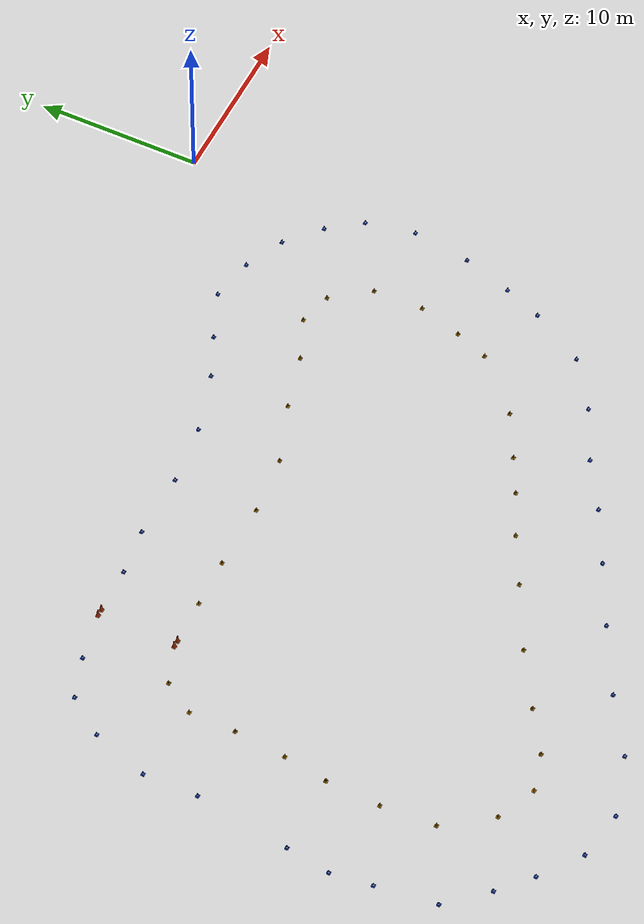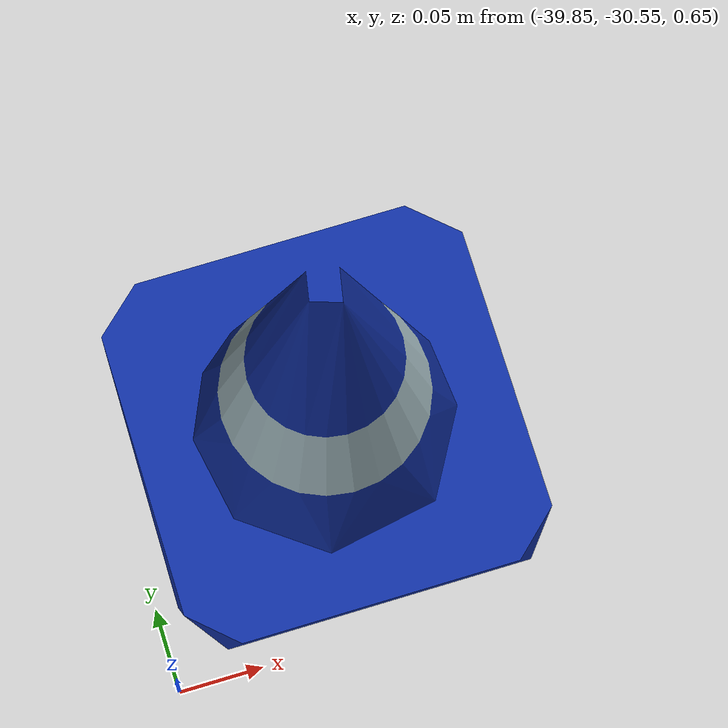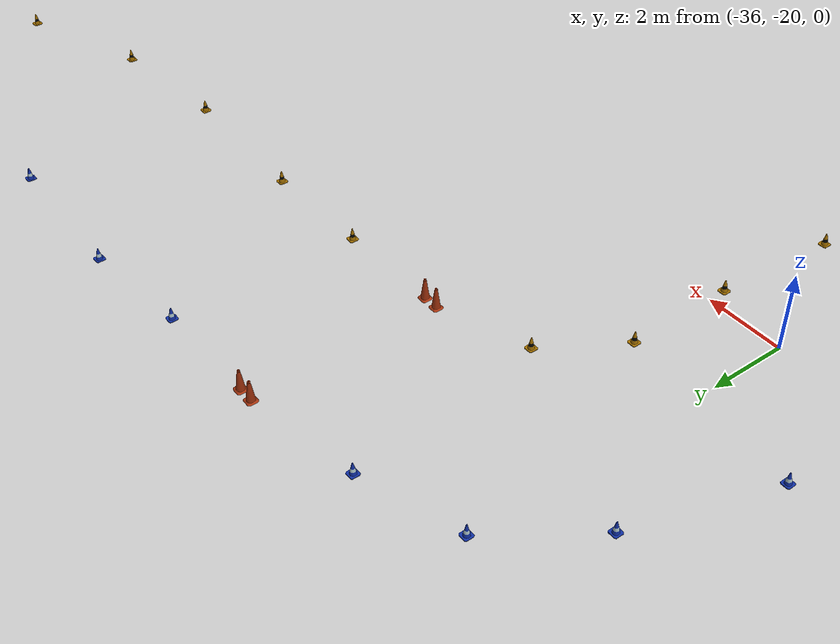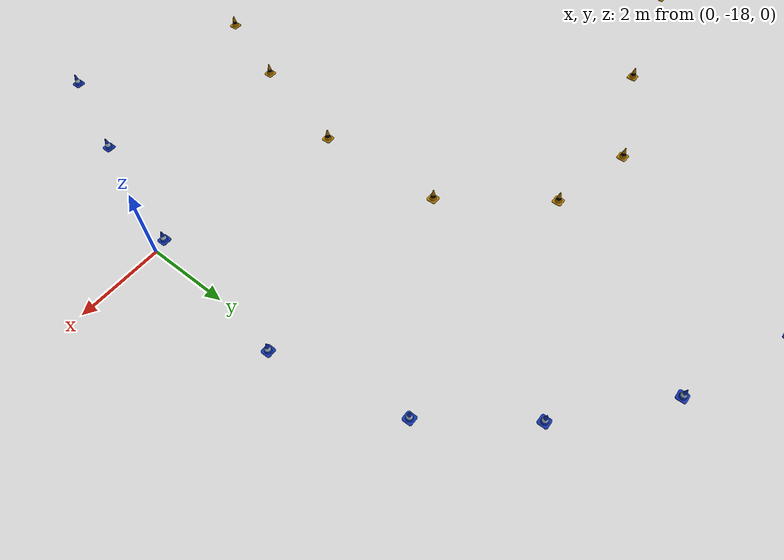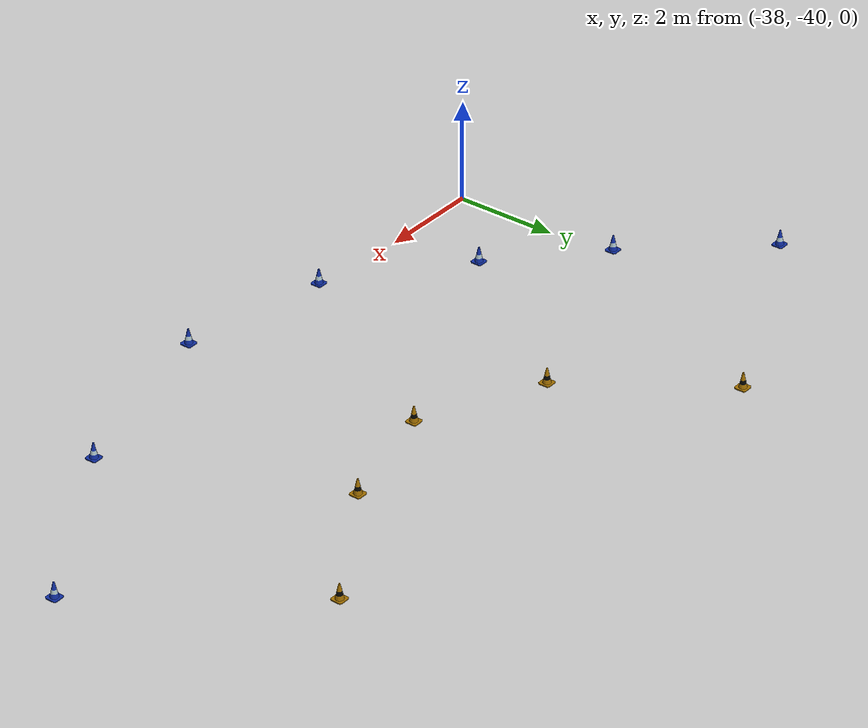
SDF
<sdf version='1.6'>
  <world name='small_track_CT_CT'>
    <gui fullscreen='0'>
      <camera name='user_camera'>
        <pose frame=''>-40 40 20 0 0.667643 -1</pose>
        <view_controller>orbit</view_controller>
        <projection_type>perspective</projection_type>
      </camera>
    </gui>

    <!-- WORLD SETTINGS -->
    <scene>
      <sky>
        <clouds>
          <speed>3</speed>
        </clouds>
      </sky>
      <ambient>1.0 1.0 1.0 1.0</ambient>
      <shadows>false</shadows>
    </scene>

    <light name='sun' type='directional'>
      <cast_shadows>1</cast_shadows>
      <pose frame=''>0 0 10 0 -0 0</pose>
      <diffuse>0.8 0.8 0.8 1</diffuse>
      <specular>0.1 0.1 0.1 1</specular>
      <attenuation>
        <range>1000</range>
        <constant>0.9</constant>
        <linear>0.01</linear>
        <quadratic>0.001</quadratic>
      </attenuation>
      <direction>-0.5 0.5 -1</direction>
    </light>

    <!-- MODELS -->
    <include>
      <uri>model://models/ground_plane</uri>
      <pose>0.0 0.0 0.0 0 0 0</pose>
    </include>

    <include>
      <uri>model://models/small_track_CT_CT</uri>
      <pose>0 0 0.5 0 0 0</pose>
    </include>

  </world>
</sdf>

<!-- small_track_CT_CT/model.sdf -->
<sdf version='1.6'>
  <model name='small_track_CT_CT'>

    <link name='link_0_clone_0'>
      <pose frame=''>-40.0497716851 -28.0184498663 0.15 0 -0 0</pose>

      <collision name="collision">
        <geometry>
          <mesh>
            <uri>model://eufs_description/meshes/cone_blue.dae</uri>
          </mesh>
        </geometry>
      </collision>

      <visual name="visual">
        <geometry>
          <mesh>
            <uri>model://eufs_description/meshes/cone_blue.dae</uri>
          </mesh>
        </geometry>
      </visual>
    </link>

    <link name='link_0_clone_1'>
      <pose frame=''>-39.7246008251 -30.4247142301 0.15 0 -0 0</pose>

      <collision name="collision">
        <geometry>
          <mesh>
            <uri>model://eufs_description/meshes/cone_blue.dae</uri>
          </mesh>
        </geometry>
      </collision>

      <visual name="visual">
        <geometry>
          <mesh>
            <uri>model://eufs_description/meshes/cone_blue.dae</uri>
          </mesh>
        </geometry>
      </visual>
    </link>

    <link name='link_0_clone_2'>
      <pose frame=''>-39.6595666531 -25.4170829866 0.15 0 -0 0</pose>

      <collision name="collision">
        <geometry>
          <mesh>
            <uri>model://eufs_description/meshes/cone_blue.dae</uri>
          </mesh>
        </geometry>
      </collision>

      <visual name="visual">
        <geometry>
          <mesh>
            <uri>model://eufs_description/meshes/cone_blue.dae</uri>
          </mesh>
        </geometry>
      </visual>
    </link>

    <link name='link_0_clone_3'>
      <pose frame=''>-39.2693616211 -33.9365595177 0.15 0 -0 0</pose>

      <collision name="collision">
        <geometry>
          <mesh>
            <uri>model://eufs_description/meshes/cone_blue.dae</uri>
          </mesh>
        </geometry>
      </collision>

      <visual name="visual">
        <geometry>
          <mesh>
            <uri>model://eufs_description/meshes/cone_blue.dae</uri>
          </mesh>
        </geometry>
      </visual>
    </link>

    <link name='link_0_clone_4'>
      <pose frame=''>-38.9441907612 -16.6374697676 0.15 0 -0 0</pose>

      <collision name="collision">
        <geometry>
          <mesh>
            <uri>model://eufs_description/meshes/cone_blue.dae</uri>
          </mesh>
        </geometry>
      </collision>

      <visual name="visual">
        <geometry>
          <mesh>
            <uri>model://eufs_description/meshes/cone_blue.dae</uri>
          </mesh>
        </geometry>
      </visual>
    </link>

    <link name='link_0_clone_5'>
      <pose frame=''>-38.8791565892 -19.8241441952 0.15 0 -0 0</pose>

      <collision name="collision">
        <geometry>
          <mesh>
            <uri>model://eufs_description/meshes/cone_blue.dae</uri>
          </mesh>
        </geometry>
      </collision>

      <visual name="visual">
        <geometry>
          <mesh>
            <uri>model://eufs_description/meshes/cone_blue.dae</uri>
          </mesh>
        </geometry>
      </visual>
    </link>

    <link name='link_0_clone_6'>
      <pose frame=''>-37.8386098373 -13.3207269959 0.15 0 -0 0</pose>

      <collision name="collision">
        <geometry>
          <mesh>
            <uri>model://eufs_description/meshes/cone_blue.dae</uri>
          </mesh>
        </geometry>
      </collision>

      <visual name="visual">
        <geometry>
          <mesh>
            <uri>model://eufs_description/meshes/cone_blue.dae</uri>
          </mesh>
        </geometry>
      </visual>
    </link>

    <link name='link_0_clone_7'>
      <pose frame=''>-37.3183364614 -36.1477213655 0.15 0 -0 0</pose>

      <collision name="collision">
        <geometry>
          <mesh>
            <uri>model://eufs_description/meshes/cone_blue.dae</uri>
          </mesh>
        </geometry>
      </collision>

      <visual name="visual">
        <geometry>
          <mesh>
            <uri>model://eufs_description/meshes/cone_blue.dae</uri>
          </mesh>
        </geometry>
      </visual>
    </link>

    <link name='link_0_clone_8'>
      <pose frame=''>-36.2777897095 -11.1745993201 0.15 0 -0 0</pose>

      <collision name="collision">
        <geometry>
          <mesh>
            <uri>model://eufs_description/meshes/cone_blue.dae</uri>
          </mesh>
        </geometry>
      </collision>

      <visual name="visual">
        <geometry>
          <mesh>
            <uri>model://eufs_description/meshes/cone_blue.dae</uri>
          </mesh>
        </geometry>
      </visual>
    </link>

    <link name='link_0_clone_9'>
      <pose frame=''>-35.5624138175 -37.7735756653 0.15 0 -0 0</pose>

      <collision name="collision">
        <geometry>
          <mesh>
            <uri>model://eufs_description/meshes/cone_blue.dae</uri>
          </mesh>
        </geometry>
      </collision>

      <visual name="visual">
        <geometry>
          <mesh>
            <uri>model://eufs_description/meshes/cone_blue.dae</uri>
          </mesh>
        </geometry>
      </visual>
    </link>

    <link name='link_0_clone_10'>
      <pose frame=''>-35.2372429576 -28.6687915863 0.15 0 -0 0</pose>

      <collision name="collision">
        <geometry>
          <mesh>
            <uri>model://eufs_description/meshes/cone_yellow.dae</uri>
          </mesh>
        </geometry>
      </collision>

      <visual name="visual">
        <geometry>
          <mesh>
            <uri>model://eufs_description/meshes/cone_yellow.dae</uri>
          </mesh>
        </geometry>
      </visual>
    </link>

    <link name='link_0_clone_11'>
      <pose frame=''>-35.1071746136 -25.4821171586 0.15 0 -0 0</pose>

      <collision name="collision">
        <geometry>
          <mesh>
            <uri>model://eufs_description/meshes/cone_yellow.dae</uri>
          </mesh>
        </geometry>
      </collision>

      <visual name="visual">
        <geometry>
          <mesh>
            <uri>model://eufs_description/meshes/cone_yellow.dae</uri>
          </mesh>
        </geometry>
      </visual>
    </link>

    <link name='link_0_clone_12'>
      <pose frame=''>-35.0421404416 -31.8554660139 0.15 0 -0 0</pose>

      <collision name="collision">
        <geometry>
          <mesh>
            <uri>model://eufs_description/meshes/cone_yellow.dae</uri>
          </mesh>
        </geometry>
      </collision>

      <visual name="visual">
        <geometry>
          <mesh>
            <uri>model://eufs_description/meshes/cone_yellow.dae</uri>
          </mesh>
        </geometry>
      </visual>
    </link>

    <link name='link_0_clone_13'>
      <pose frame=''>-34.7169695816 -22.8807502789 0.15 0 -0 0</pose>

      <collision name="collision">
        <geometry>
          <mesh>
            <uri>model://eufs_description/meshes/cone_yellow.dae</uri>
          </mesh>
        </geometry>
      </collision>

      <visual name="visual">
        <geometry>
          <mesh>
            <uri>model://eufs_description/meshes/cone_yellow.dae</uri>
          </mesh>
        </geometry>
      </visual>
    </link>

    <link name='link_0_clone_14'>
      <pose frame=''>-34.4568328937 -19.8241441952 0.15 0 -0 0</pose>

      <collision name="collision">
        <geometry>
          <mesh>
            <uri>model://eufs_description/meshes/cone_yellow.dae</uri>
          </mesh>
        </geometry>
      </collision>

      <visual name="visual">
        <geometry>
          <mesh>
            <uri>model://eufs_description/meshes/cone_yellow.dae</uri>
          </mesh>
        </geometry>
      </visual>
    </link>

    <link name='link_0_clone_15'>
      <pose frame=''>-34.4568328937 -17.0927089715 0.15 0 -0 0</pose>

      <collision name="collision">
        <geometry>
          <mesh>
            <uri>model://eufs_description/meshes/cone_yellow.dae</uri>
          </mesh>
        </geometry>
      </collision>

      <visual name="visual">
        <geometry>
          <mesh>
            <uri>model://eufs_description/meshes/cone_yellow.dae</uri>
          </mesh>
        </geometry>
      </visual>
    </link>

    <link name='link_0_clone_16'>
      <pose frame=''>-33.8715253457 -10.3941892562 0.15 0 -0 0</pose>

      <collision name="collision">
        <geometry>
          <mesh>
            <uri>model://eufs_description/meshes/cone_blue.dae</uri>
          </mesh>
        </geometry>
      </collision>

      <visual name="visual">
        <geometry>
          <mesh>
            <uri>model://eufs_description/meshes/cone_blue.dae</uri>
          </mesh>
        </geometry>
      </visual>
    </link>

    <link name='link_0_clone_17'>
      <pose frame=''>-33.2862177978 -39.5294983091 0.15 0 -0 0</pose>

      <collision name="collision">
        <geometry>
          <mesh>
            <uri>model://eufs_description/meshes/cone_blue.dae</uri>
          </mesh>
        </geometry>
      </collision>

      <visual name="visual">
        <geometry>
          <mesh>
            <uri>model://eufs_description/meshes/cone_blue.dae</uri>
          </mesh>
        </geometry>
      </visual>
    </link>

    <link name='link_0_clone_18'>
      <pose frame=''>-33.2862177978 -15.2717521557 0.15 0 -0 0</pose>

      <collision name="collision">
        <geometry>
          <mesh>
            <uri>model://eufs_description/meshes/cone_yellow.dae</uri>
          </mesh>
        </geometry>
      </collision>

      <visual name="visual">
        <geometry>
          <mesh>
            <uri>model://eufs_description/meshes/cone_yellow.dae</uri>
          </mesh>
        </geometry>
      </visual>
    </link>

    <link name='link_0_clone_19'>
      <pose frame=''>-33.1561494538 -34.5218670657 0.15 0 -0 0</pose>

      <collision name="collision">
        <geometry>
          <mesh>
            <uri>model://eufs_description/meshes/cone_yellow.dae</uri>
          </mesh>
        </geometry>
      </collision>

      <visual name="visual">
        <geometry>
          <mesh>
            <uri>model://eufs_description/meshes/cone_yellow.dae</uri>
          </mesh>
        </geometry>
      </visual>
    </link>

    <link name='link_0_clone_20'>
      <pose frame=''>-31.07505595 -14.4913420918 0.15 0 -0 0</pose>

      <collision name="collision">
        <geometry>
          <mesh>
            <uri>model://eufs_description/meshes/cone_big.dae</uri>
          </mesh>
        </geometry>
      </collision>

      <visual name="visual">
        <geometry>
          <mesh>
            <uri>model://eufs_description/meshes/cone_big.dae</uri>
          </mesh>
        </geometry>
      </visual>
    </link>

    <link name='link_0_clone_21'>
      <pose frame=''>-31.07505595 -9.87391588029 0.15 0 -0 0</pose>

      <collision name="collision">
        <geometry>
          <mesh>
            <uri>model://eufs_description/meshes/cone_big.dae</uri>
          </mesh>
        </geometry>
      </collision>

      <visual name="visual">
        <geometry>
          <mesh>
            <uri>model://eufs_description/meshes/cone_big.dae</uri>
          </mesh>
        </geometry>
      </visual>
    </link>

    <link name='link_0_clone_22'>
      <pose frame=''>-30.879953434 -35.5624138175 0.15 0 -0 0</pose>

      <collision name="collision">
        <geometry>
          <mesh>
            <uri>model://eufs_description/meshes/cone_yellow.dae</uri>
          </mesh>
        </geometry>
      </collision>

      <visual name="visual">
        <geometry>
          <mesh>
            <uri>model://eufs_description/meshes/cone_yellow.dae</uri>
          </mesh>
        </geometry>
      </visual>
    </link>

    <link name='link_0_clone_23'>
      <pose frame=''>-30.6848509181 -14.4913420918 0.15 0 -0 0</pose>

      <collision name="collision">
        <geometry>
          <mesh>
            <uri>model://eufs_description/meshes/cone_big.dae</uri>
          </mesh>
        </geometry>
      </collision>

      <visual name="visual">
        <geometry>
          <mesh>
            <uri>model://eufs_description/meshes/cone_big.dae</uri>
          </mesh>
        </geometry>
      </visual>
    </link>

    <link name='link_0_clone_24'>
      <pose frame=''>-30.6848509181 -9.87391588029 0.15 0 -0 0</pose>

      <collision name="collision">
        <geometry>
          <mesh>
            <uri>model://eufs_description/meshes/cone_big.dae</uri>
          </mesh>
        </geometry>
      </collision>

      <visual name="visual">
        <geometry>
          <mesh>
            <uri>model://eufs_description/meshes/cone_big.dae</uri>
          </mesh>
        </geometry>
      </visual>
    </link>

    <link name='link_0_clone_25'>
      <pose frame=''>-30.4247142301 -40.0497716851 0.15 0 -0 0</pose>

      <collision name="collision">
        <geometry>
          <mesh>
            <uri>model://eufs_description/meshes/cone_blue.dae</uri>
          </mesh>
        </geometry>
      </collision>

      <visual name="visual">
        <geometry>
          <mesh>
            <uri>model://eufs_description/meshes/cone_blue.dae</uri>
          </mesh>
        </geometry>
      </visual>
    </link>

    <link name='link_0_clone_26'>
      <pose frame=''>-28.6687915863 -34.9771062696 0.15 0 -0 0</pose>

      <collision name="collision">
        <geometry>
          <mesh>
            <uri>model://eufs_description/meshes/cone_yellow.dae</uri>
          </mesh>
        </geometry>
      </collision>

      <visual name="visual">
        <geometry>
          <mesh>
            <uri>model://eufs_description/meshes/cone_yellow.dae</uri>
          </mesh>
        </geometry>
      </visual>
    </link>

    <link name='link_0_clone_27'>
      <pose frame=''>-28.0184498663 -14.4263079198 0.15 0 -0 0</pose>

      <collision name="collision">
        <geometry>
          <mesh>
            <uri>model://eufs_description/meshes/cone_yellow.dae</uri>
          </mesh>
        </geometry>
      </collision>

      <visual name="visual">
        <geometry>
          <mesh>
            <uri>model://eufs_description/meshes/cone_yellow.dae</uri>
          </mesh>
        </geometry>
      </visual>
    </link>

    <link name='link_0_clone_28'>
      <pose frame=''>-27.9534156944 -9.80888170829 0.15 0 -0 0</pose>

      <collision name="collision">
        <geometry>
          <mesh>
            <uri>model://eufs_description/meshes/cone_blue.dae</uri>
          </mesh>
        </geometry>
      </collision>

      <visual name="visual">
        <geometry>
          <mesh>
            <uri>model://eufs_description/meshes/cone_blue.dae</uri>
          </mesh>
        </geometry>
      </visual>
    </link>

    <link name='link_0_clone_29'>
      <pose frame=''>-26.8478347705 -39.0092249332 0.15 0 -0 0</pose>

      <collision name="collision">
        <geometry>
          <mesh>
            <uri>model://eufs_description/meshes/cone_blue.dae</uri>
          </mesh>
        </geometry>
      </collision>

      <visual name="visual">
        <geometry>
          <mesh>
            <uri>model://eufs_description/meshes/cone_blue.dae</uri>
          </mesh>
        </geometry>
      </visual>
    </link>

    <link name='link_0_clone_30'>
      <pose frame=''>-26.2625272225 -33.4162861418 0.15 0 -0 0</pose>

      <collision name="collision">
        <geometry>
          <mesh>
            <uri>model://eufs_description/meshes/cone_yellow.dae</uri>
          </mesh>
        </geometry>
      </collision>

      <visual name="visual">
        <geometry>
          <mesh>
            <uri>model://eufs_description/meshes/cone_yellow.dae</uri>
          </mesh>
        </geometry>
      </visual>
    </link>

    <link name='link_0_clone_31'>
      <pose frame=''>-25.1569462987 -9.48371084833 0.15 0 -0 0</pose>

      <collision name="collision">
        <geometry>
          <mesh>
            <uri>model://eufs_description/meshes/cone_blue.dae</uri>
          </mesh>
        </geometry>
      </collision>

      <visual name="visual">
        <geometry>
          <mesh>
            <uri>model://eufs_description/meshes/cone_blue.dae</uri>
          </mesh>
        </geometry>
      </visual>
    </link>

    <link name='link_0_clone_32'>
      <pose frame=''>-25.0919121267 -14.3612737478 0.15 0 -0 0</pose>

      <collision name="collision">
        <geometry>
          <mesh>
            <uri>model://eufs_description/meshes/cone_yellow.dae</uri>
          </mesh>
        </geometry>
      </collision>

      <visual name="visual">
        <geometry>
          <mesh>
            <uri>model://eufs_description/meshes/cone_yellow.dae</uri>
          </mesh>
        </geometry>
      </visual>
    </link>

    <link name='link_0_clone_33'>
      <pose frame=''>-23.5961261708 -36.9281314294 0.15 0 -0 0</pose>

      <collision name="collision">
        <geometry>
          <mesh>
            <uri>model://eufs_description/meshes/cone_blue.dae</uri>
          </mesh>
        </geometry>
      </collision>

      <visual name="visual">
        <geometry>
          <mesh>
            <uri>model://eufs_description/meshes/cone_blue.dae</uri>
          </mesh>
        </geometry>
      </visual>
    </link>

    <link name='link_0_clone_34'>
      <pose frame=''>-23.0758527949 -31.465260982 0.15 0 -0 0</pose>

      <collision name="collision">
        <geometry>
          <mesh>
            <uri>model://eufs_description/meshes/cone_yellow.dae</uri>
          </mesh>
        </geometry>
      </collision>

      <visual name="visual">
        <geometry>
          <mesh>
            <uri>model://eufs_description/meshes/cone_yellow.dae</uri>
          </mesh>
        </geometry>
      </visual>
    </link>

    <link name='link_0_clone_35'>
      <pose frame=''>-21.2548959791 -9.54874502032 0.15 0 -0 0</pose>

      <collision name="collision">
        <geometry>
          <mesh>
            <uri>model://eufs_description/meshes/cone_blue.dae</uri>
          </mesh>
        </geometry>
      </collision>

      <visual name="visual">
        <geometry>
          <mesh>
            <uri>model://eufs_description/meshes/cone_blue.dae</uri>
          </mesh>
        </geometry>
      </visual>
    </link>

    <link name='link_0_clone_36'>
      <pose frame=''>-21.1248276351 -14.4913420918 0.15 0 -0 0</pose>

      <collision name="collision">
        <geometry>
          <mesh>
            <uri>model://eufs_description/meshes/cone_yellow.dae</uri>
          </mesh>
        </geometry>
      </collision>

      <visual name="visual">
        <geometry>
          <mesh>
            <uri>model://eufs_description/meshes/cone_yellow.dae</uri>
          </mesh>
        </geometry>
      </visual>
    </link>

    <link name='link_0_clone_37'>
      <pose frame=''>-19.6940758512 -34.8470379256 0.15 0 -0 0</pose>

      <collision name="collision">
        <geometry>
          <mesh>
            <uri>model://eufs_description/meshes/cone_blue.dae</uri>
          </mesh>
        </geometry>
      </collision>

      <visual name="visual">
        <geometry>
          <mesh>
            <uri>model://eufs_description/meshes/cone_blue.dae</uri>
          </mesh>
        </geometry>
      </visual>
    </link>

    <link name='link_0_clone_38'>
      <pose frame=''>-19.3038708193 -29.5142358222 0.15 0 -0 0</pose>

      <collision name="collision">
        <geometry>
          <mesh>
            <uri>model://eufs_description/meshes/cone_yellow.dae</uri>
          </mesh>
        </geometry>
      </collision>

      <visual name="visual">
        <geometry>
          <mesh>
            <uri>model://eufs_description/meshes/cone_yellow.dae</uri>
          </mesh>
        </geometry>
      </visual>
    </link>

    <link name='link_0_clone_39'>
      <pose frame=''>-17.6129823475 -9.15853998836 0.15 0 -0 0</pose>

      <collision name="collision">
        <geometry>
          <mesh>
            <uri>model://eufs_description/meshes/cone_blue.dae</uri>
          </mesh>
        </geometry>
      </collision>

      <visual name="visual">
        <geometry>
          <mesh>
            <uri>model://eufs_description/meshes/cone_blue.dae</uri>
          </mesh>
        </geometry>
      </visual>
    </link>

    <link name='link_0_clone_40'>
      <pose frame=''>-17.5479481755 -14.1661712318 0.15 0 -0 0</pose>

      <collision name="collision">
        <geometry>
          <mesh>
            <uri>model://eufs_description/meshes/cone_yellow.dae</uri>
          </mesh>
        </geometry>
      </collision>

      <visual name="visual">
        <geometry>
          <mesh>
            <uri>model://eufs_description/meshes/cone_yellow.dae</uri>
          </mesh>
        </geometry>
      </visual>
    </link>

    <link name='link_0_clone_41'>
      <pose frame=''>-16.4423672516 -28.0184498663 0.15 0 -0 0</pose>

      <collision name="collision">
        <geometry>
          <mesh>
            <uri>model://eufs_description/meshes/cone_yellow.dae</uri>
          </mesh>
        </geometry>
      </collision>

      <visual name="visual">
        <geometry>
          <mesh>
            <uri>model://eufs_description/meshes/cone_yellow.dae</uri>
          </mesh>
        </geometry>
      </visual>
    </link>

    <link name='link_0_clone_42'>
      <pose frame=''>-16.0521622196 -33.0260811098 0.15 0 -0 0</pose>

      <collision name="collision">
        <geometry>
          <mesh>
            <uri>model://eufs_description/meshes/cone_blue.dae</uri>
          </mesh>
        </geometry>
      </collision>

      <visual name="visual">
        <geometry>
          <mesh>
            <uri>model://eufs_description/meshes/cone_blue.dae</uri>
          </mesh>
        </geometry>
      </visual>
    </link>

    <link name='link_0_clone_43'>
      <pose frame=''>-13.9710687158 -12.930521964 0.15 0 -0 0</pose>

      <collision name="collision">
        <geometry>
          <mesh>
            <uri>model://eufs_description/meshes/cone_yellow.dae</uri>
          </mesh>
        </geometry>
      </collision>

      <visual name="visual">
        <geometry>
          <mesh>
            <uri>model://eufs_description/meshes/cone_yellow.dae</uri>
          </mesh>
        </geometry>
      </visual>
    </link>

    <link name='link_0_clone_44'>
      <pose frame=''>-13.9710687158 -8.11799323647 0.15 0 -0 0</pose>

      <collision name="collision">
        <geometry>
          <mesh>
            <uri>model://eufs_description/meshes/cone_blue.dae</uri>
          </mesh>
        </geometry>
      </collision>

      <visual name="visual">
        <geometry>
          <mesh>
            <uri>model://eufs_description/meshes/cone_blue.dae</uri>
          </mesh>
        </geometry>
      </visual>
    </link>

    <link name='link_0_clone_45'>
      <pose frame=''>-13.8410003719 -26.8478347705 0.15 0 -0 0</pose>

      <collision name="collision">
        <geometry>
          <mesh>
            <uri>model://eufs_description/meshes/cone_yellow.dae</uri>
          </mesh>
        </geometry>
      </collision>

      <visual name="visual">
        <geometry>
          <mesh>
            <uri>model://eufs_description/meshes/cone_yellow.dae</uri>
          </mesh>
        </geometry>
      </visual>
    </link>

    <link name='link_0_clone_46'>
      <pose frame=''>-12.865487792 -31.40022681 0.15 0 -0 0</pose>

      <collision name="collision">
        <geometry>
          <mesh>
            <uri>model://eufs_description/meshes/cone_blue.dae</uri>
          </mesh>
        </geometry>
      </collision>

      <visual name="visual">
        <geometry>
          <mesh>
            <uri>model://eufs_description/meshes/cone_blue.dae</uri>
          </mesh>
        </geometry>
      </visual>
    </link>

    <link name='link_0_clone_47'>
      <pose frame=''>-11.6948726961 -25.7422538466 0.15 0 -0 0</pose>

      <collision name="collision">
        <geometry>
          <mesh>
            <uri>model://eufs_description/meshes/cone_yellow.dae</uri>
          </mesh>
        </geometry>
      </collision>

      <visual name="visual">
        <geometry>
          <mesh>
            <uri>model://eufs_description/meshes/cone_yellow.dae</uri>
          </mesh>
        </geometry>
      </visual>
    </link>

    <link name='link_0_clone_48'>
      <pose frame=''>-11.4347360081 -7.01241231259 0.15 0 -0 0</pose>

      <collision name="collision">
        <geometry>
          <mesh>
            <uri>model://eufs_description/meshes/cone_blue.dae</uri>
          </mesh>
        </geometry>
      </collision>

      <visual name="visual">
        <geometry>
          <mesh>
            <uri>model://eufs_description/meshes/cone_blue.dae</uri>
          </mesh>
        </geometry>
      </visual>
    </link>

    <link name='link_0_clone_49'>
      <pose frame=''>-10.6543259442 -12.0850777281 0.15 0 -0 0</pose>

      <collision name="collision">
        <geometry>
          <mesh>
            <uri>model://eufs_description/meshes/cone_yellow.dae</uri>
          </mesh>
        </geometry>
      </collision>

      <visual name="visual">
        <geometry>
          <mesh>
            <uri>model://eufs_description/meshes/cone_yellow.dae</uri>
          </mesh>
        </geometry>
      </visual>
    </link>

    <link name='link_0_clone_50'>
      <pose frame=''>-10.0039842243 -29.6443041662 0.15 0 -0 0</pose>

      <collision name="collision">
        <geometry>
          <mesh>
            <uri>model://eufs_description/meshes/cone_blue.dae</uri>
          </mesh>
        </geometry>
      </collision>

      <visual name="visual">
        <geometry>
          <mesh>
            <uri>model://eufs_description/meshes/cone_blue.dae</uri>
          </mesh>
        </geometry>
      </visual>
    </link>

    <link name='link_0_clone_51'>
      <pose frame=''>-9.02847164438 -24.3115020627 0.15 0 -0 0</pose>

      <collision name="collision">
        <geometry>
          <mesh>
            <uri>model://eufs_description/meshes/cone_yellow.dae</uri>
          </mesh>
        </geometry>
      </collision>

      <visual name="visual">
        <geometry>
          <mesh>
            <uri>model://eufs_description/meshes/cone_yellow.dae</uri>
          </mesh>
        </geometry>
      </visual>
    </link>

    <link name='link_0_clone_52'>
      <pose frame=''>-8.57323244043 -5.84179721672 0.15 0 -0 0</pose>

      <collision name="collision">
        <geometry>
          <mesh>
            <uri>model://eufs_description/meshes/cone_blue.dae</uri>
          </mesh>
        </geometry>
      </collision>

      <visual name="visual">
        <geometry>
          <mesh>
            <uri>model://eufs_description/meshes/cone_blue.dae</uri>
          </mesh>
        </geometry>
      </visual>
    </link>

    <link name='link_0_clone_53'>
      <pose frame=''>-8.11799323647 -11.0445309762 0.15 0 -0 0</pose>

      <collision name="collision">
        <geometry>
          <mesh>
            <uri>model://eufs_description/meshes/cone_yellow.dae</uri>
          </mesh>
        </geometry>
      </collision>

      <visual name="visual">
        <geometry>
          <mesh>
            <uri>model://eufs_description/meshes/cone_yellow.dae</uri>
          </mesh>
        </geometry>
      </visual>
    </link>

    <link name='link_0_clone_54'>
      <pose frame=''>-6.81730979661 -28.1485182103 0.15 0 -0 0</pose>

      <collision name="collision">
        <geometry>
          <mesh>
            <uri>model://eufs_description/meshes/cone_blue.dae</uri>
          </mesh>
        </geometry>
      </collision>

      <visual name="visual">
        <geometry>
          <mesh>
            <uri>model://eufs_description/meshes/cone_blue.dae</uri>
          </mesh>
        </geometry>
      </visual>
    </link>

    <link name='link_0_clone_55'>
      <pose frame=''>-6.10193390469 -11.5648043521 0.15 0 -0 0</pose>

      <collision name="collision">
        <geometry>
          <mesh>
            <uri>model://eufs_description/meshes/cone_yellow.dae</uri>
          </mesh>
        </geometry>
      </collision>

      <visual name="visual">
        <geometry>
          <mesh>
            <uri>model://eufs_description/meshes/cone_yellow.dae</uri>
          </mesh>
        </geometry>
      </visual>
    </link>

    <link name='link_0_clone_56'>
      <pose frame=''>-5.9718655607 -21.3849643231 0.15 0 -0 0</pose>

      <collision name="collision">
        <geometry>
          <mesh>
            <uri>model://eufs_description/meshes/cone_yellow.dae</uri>
          </mesh>
        </geometry>
      </collision>

      <visual name="visual">
        <geometry>
          <mesh>
            <uri>model://eufs_description/meshes/cone_yellow.dae</uri>
          </mesh>
        </geometry>
      </visual>
    </link>

    <link name='link_0_clone_57'>
      <pose frame=''>-5.9718655607 -6.36207059266 0.15 0 -0 0</pose>

      <collision name="collision">
        <geometry>
          <mesh>
            <uri>model://eufs_description/meshes/cone_blue.dae</uri>
          </mesh>
        </geometry>
      </collision>

      <visual name="visual">
        <geometry>
          <mesh>
            <uri>model://eufs_description/meshes/cone_blue.dae</uri>
          </mesh>
        </geometry>
      </visual>
    </link>

    <link name='link_0_clone_58'>
      <pose frame=''>-5.19145549679 -19.3689049913 0.15 0 -0 0</pose>

      <collision name="collision">
        <geometry>
          <mesh>
            <uri>model://eufs_description/meshes/cone_yellow.dae</uri>
          </mesh>
        </geometry>
      </collision>

      <visual name="visual">
        <geometry>
          <mesh>
            <uri>model://eufs_description/meshes/cone_yellow.dae</uri>
          </mesh>
        </geometry>
      </visual>
    </link>

    <link name='link_0_clone_59'>
      <pose frame=''>-4.47607960486 -13.7759661999 0.15 0 -0 0</pose>

      <collision name="collision">
        <geometry>
          <mesh>
            <uri>model://eufs_description/meshes/cone_yellow.dae</uri>
          </mesh>
        </geometry>
      </collision>

      <visual name="visual">
        <geometry>
          <mesh>
            <uri>model://eufs_description/meshes/cone_yellow.dae</uri>
          </mesh>
        </geometry>
      </visual>
    </link>

    <link name='link_0_clone_60'>
      <pose frame=''>-4.41104543287 -16.7675381116 0.15 0 -0 0</pose>

      <collision name="collision">
        <geometry>
          <mesh>
            <uri>model://eufs_description/meshes/cone_yellow.dae</uri>
          </mesh>
        </geometry>
      </collision>

      <visual name="visual">
        <geometry>
          <mesh>
            <uri>model://eufs_description/meshes/cone_yellow.dae</uri>
          </mesh>
        </geometry>
      </visual>
    </link>

    <link name='link_0_clone_61'>
      <pose frame=''>-3.89077205693 -26.1324588786 0.15 0 -0 0</pose>

      <collision name="collision">
        <geometry>
          <mesh>
            <uri>model://eufs_description/meshes/cone_blue.dae</uri>
          </mesh>
        </geometry>
      </collision>

      <visual name="visual">
        <geometry>
          <mesh>
            <uri>model://eufs_description/meshes/cone_blue.dae</uri>
          </mesh>
        </geometry>
      </visual>
    </link>

    <link name='link_0_clone_62'>
      <pose frame=''>-3.56560119696 -7.46765151654 0.15 0 -0 0</pose>

      <collision name="collision">
        <geometry>
          <mesh>
            <uri>model://eufs_description/meshes/cone_blue.dae</uri>
          </mesh>
        </geometry>
      </collision>

      <visual name="visual">
        <geometry>
          <mesh>
            <uri>model://eufs_description/meshes/cone_blue.dae</uri>
          </mesh>
        </geometry>
      </visual>
    </link>

    <link name='link_0_clone_63'>
      <pose frame=''>-2.00478106913 -22.8807502789 0.15 0 -0 0</pose>

      <collision name="collision">
        <geometry>
          <mesh>
            <uri>model://eufs_description/meshes/cone_blue.dae</uri>
          </mesh>
        </geometry>
      </collision>

      <visual name="visual">
        <geometry>
          <mesh>
            <uri>model://eufs_description/meshes/cone_blue.dae</uri>
          </mesh>
        </geometry>
      </visual>
    </link>

    <link name='link_0_clone_64'>
      <pose frame=''>-1.61457603717 -9.22357416036 0.15 0 -0 0</pose>

      <collision name="collision">
        <geometry>
          <mesh>
            <uri>model://eufs_description/meshes/cone_blue.dae</uri>
          </mesh>
        </geometry>
      </collision>

      <visual name="visual">
        <geometry>
          <mesh>
            <uri>model://eufs_description/meshes/cone_blue.dae</uri>
          </mesh>
        </geometry>
      </visual>
    </link>

    <link name='link_0_clone_65'>
      <pose frame=''>-1.09430266123 -20.6045542591 0.15 0 -0 0</pose>

      <collision name="collision">
        <geometry>
          <mesh>
            <uri>model://eufs_description/meshes/cone_blue.dae</uri>
          </mesh>
        </geometry>
      </collision>

      <visual name="visual">
        <geometry>
          <mesh>
            <uri>model://eufs_description/meshes/cone_blue.dae</uri>
          </mesh>
        </geometry>
      </visual>
    </link>

    <link name='link_0_clone_66'>
      <pose frame=''>-0.183824253323 -11.1745993201 0.15 0 -0 0</pose>

      <collision name="collision">
        <geometry>
          <mesh>
            <uri>model://eufs_description/meshes/cone_blue.dae</uri>
          </mesh>
        </geometry>
      </collision>

      <visual name="visual">
        <geometry>
          <mesh>
            <uri>model://eufs_description/meshes/cone_blue.dae</uri>
          </mesh>
        </geometry>
      </visual>
    </link>

    <link name='link_0_clone_67'>
      <pose frame=''>-0.11879008133 -17.6129823475 0.15 0 -0 0</pose>

      <collision name="collision">
        <geometry>
          <mesh>
            <uri>model://eufs_description/meshes/cone_blue.dae</uri>
          </mesh>
        </geometry>
      </collision>

      <visual name="visual">
        <geometry>
          <mesh>
            <uri>model://eufs_description/meshes/cone_blue.dae</uri>
          </mesh>
        </geometry>
      </visual>
    </link>

    <link name='link_0_clone_68'>
      <pose frame=''>0.401483294615 -14.1011370598 0.15 0 -0 0</pose>

      <collision name="collision">
        <geometry>
          <mesh>
            <uri>model://eufs_description/meshes/cone_blue.dae</uri>
          </mesh>
        </geometry>
      </collision>

      <visual name="visual">
        <geometry>
          <mesh>
            <uri>model://eufs_description/meshes/cone_blue.dae</uri>
          </mesh>
        </geometry>
      </visual>
    </link>

    <static>0</static>
    <allow_auto_disable>1</allow_auto_disable>
  </model>
</sdf>
